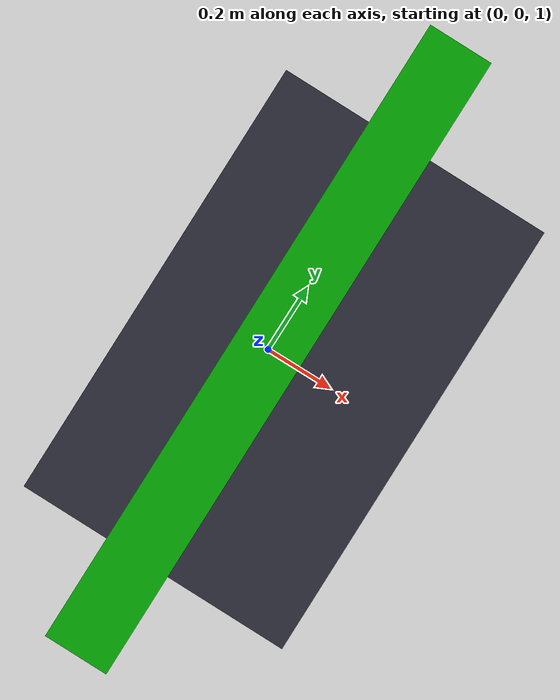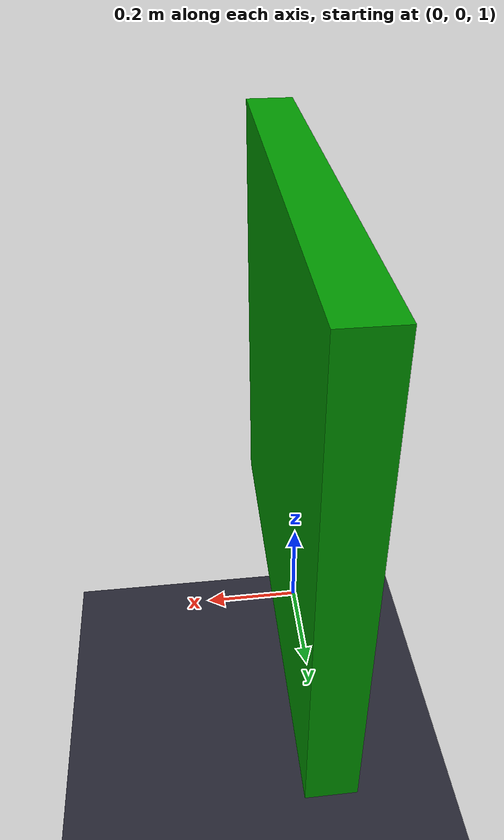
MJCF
<!-- Incluir esquema para validar ficheros xml -->
<mujoco model="Ejemplo 19"
        xmlns:xsi="http://www.w3.org/2001/XMLSchema-instance"
        xsi:noNamespaceSchemaLocation="https://raw.githubusercontent.com/google-deepmind/mujoco/3.13.0/src/xml/generated/mjcf.xsd"
        >

  <!-- Recursos -->
  <asset>

    <!-- Establecer textura de "ajedrez",
         con dos colores: "azul apagado" y "gris" -->
    <texture name="grid" type="2d"
      builtin="checker" width="512" height="512"
      rgb1="0 0 .1" rgb2=".3 .3 .3" />

    <!-- Definir un material etiquetado como "satinado" -->
    <!-- que incluye un "grid" -->
    <material name="azulejos" reflectance=".2" texture="grid"/>
  </asset>

  <worldbody>

    <!-- Suelo del mundo -->
    <geom name="suelo" type="plane" size="0 0 1" material="azulejos"/>

    <!-- Péndulo situado a 2 metros -->
    <body name="plancha" pos="0 0 2">
      <joint name="visagra" type="hinge" axis="0 1 0"/>

      <!-- Geometria: una placha con el origen
           en su parte superior-->
      <geom name="plancha_box" type="box" size=".05 .5 0.5"
          pos="0 0 -0.5"
          rgba="0 0.6 0 1"/>
    </body>

  </worldbody>
</mujoco>
